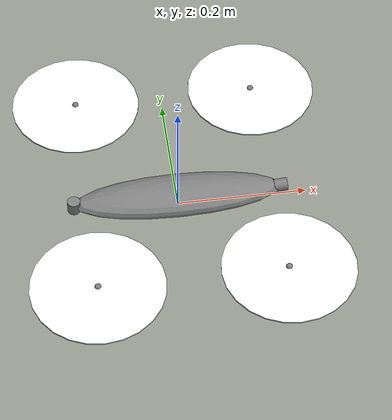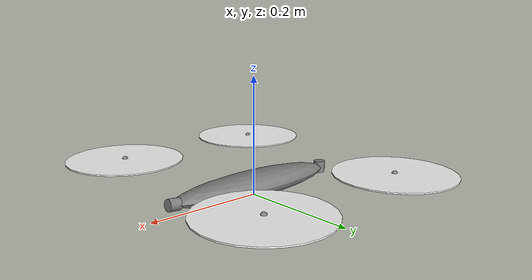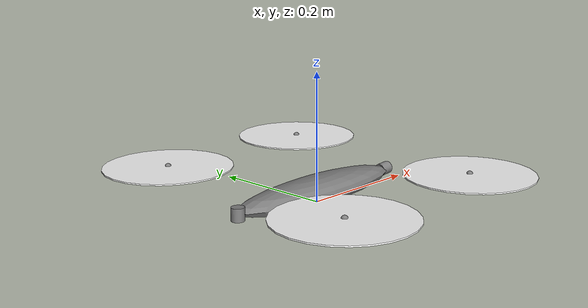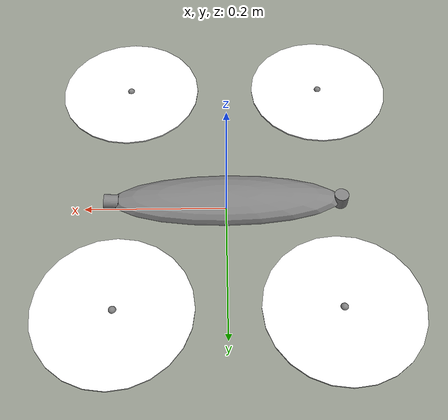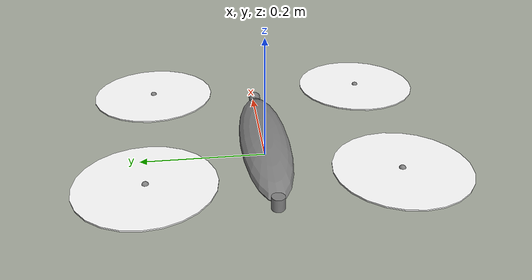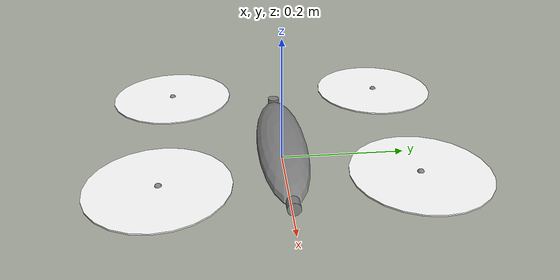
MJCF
<mujoco model="Skydio X2">
  <compiler autolimits="true" assetdir="assets"/>

  <option timestep="0.01" density="1.225" viscosity="1.8e-5"/>

  <default>
    <default class="x2">
      <geom mass="0"/>
      <motor ctrlrange="-13 13"/>
      <mesh scale="0.01 0.01 0.01"/>
      <default class="visual">
        <geom group="2" type="mesh" contype="0" conaffinity="0"/>
      </default>
      <default class="collision">
        <geom group="3" type="box"/>
        <default class="rotor">
          <geom type="ellipsoid" size=".13 .13 .1" rgba="0.8 0.1 0.1 1"/>
        </default>
      </default>
      <site group="5"/>
    </default>
  </default>

  <asset>
    <material name="invisible" rgba="0 0 0 0"/>
  </asset>

  <worldbody>
    <light name="spotlight" mode="targetbodycom" target="x2" pos="0 -1 0"/>
    <body name="x2" pos="0 0 0">
      <freejoint/>
      <camera name="track" pos="-1 0 .5" xyaxes="0 -1 0 1 0 2" mode="trackcom"/>
      <site name="imu" pos="0 0 .02"/>
      <geom class="collision" size=".06 .027 .02" pos=".04 0 .02" mass="0"/>
      <geom class="collision" size=".06 .027 .02" pos=".04 0 .06" mass="0"/>
      <geom class="collision" size=".05 .027 .02" pos="-.07 0 .065" mass="0"/>
      <geom class="collision" size=".023 .017 .01" pos="-.137 .008 .065" quat="1 0 0 1" mass="0"/>
      <geom name="rotor1" class="rotor" pos="-.14 -.18 .08" mass=".25"/>
      <geom name="rotor2" class="rotor" pos="-.14 .18 .08" mass=".25"/>
      <geom name="rotor3" class="rotor" pos=".14 .18 .08" mass=".25"/>
      <geom name="rotor4" class="rotor" pos=".14 -.18 .08" mass=".25"/>
      <geom size=".16 .04 .02" pos="0 0 0.02" type="ellipsoid" mass="0.325" class="visual"/>
      <site name="straight_lidar_site" pos=".16 .0 .02" size="0.01 0.01" type="cylinder" euler="0 85 0"/>
      <site name="upper_lidar_site" pos="-.16 .0 .02" size="0.01 0.01" type="cylinder" euler="0 0 0"/>
      <site name="thrust1" pos="-.14 -.18 .05"/>
      <geom type="cylinder" size="0.1 0.001" rgba="1 1 1 1" pos="-.14 -.18 .05" mass="0"/>
      <site name="thrust2" pos="-.14 .18 .05"/>
      <geom type="cylinder" size="0.1 0.001" rgba="1 1 1 1" pos="-.14 .18 .05" mass="0"/>
      <site name="thrust3" pos=".14 .18 .05"/>
      <geom type="cylinder" size="0.1 0.001" rgba="1 1 1 1" pos=".14 .18 .05" mass="0"/>
      <site name="thrust4" pos=".14 -.18 .05"/>
      <geom type="cylinder" size="0.1 0.001" rgba="1 1 1 1" pos=".14 -.18 .05" mass="0"/>
    </body>
  </worldbody>

  <actuator>
    <motor class="x2" name="thrust1" site="thrust1" gear="0 0 0.5 0 0 .0201"/> # передний левый мотор
    <motor class="x2" name="thrust2" site="thrust2" gear="0 0 0.5 0 0 -.0201"/> # передний правый мотор
    <motor class="x2" name="thrust3" site="thrust3" gear="0 0 0.5 0 0 .0201"/> # задний правый мотор
    <motor class="x2" name="thrust4" site="thrust4" gear="0 0 0.5 0 0 -.0201"/> # задний левый мотор
  </actuator>

  <sensor>
    <gyro name="body_gyro" site="imu"/>
    <accelerometer name="body_linacc" site="imu"/>
    <framequat name="body_quat" objtype="site" objname="imu"/>
    <rangefinder name="upper_lidar" site="upper_lidar_site" cutoff="2.0"/>
    <rangefinder name="straight_lidar" site="straight_lidar_site" cutoff="5.0"/>
  </sensor>

  <keyframe>
    <key name="hover" qpos="0 0 .3 1 0 0 0" ctrl="3.2495625 3.2495625 3.2495625 3.2495625"/>
  </keyframe>
</mujoco>
